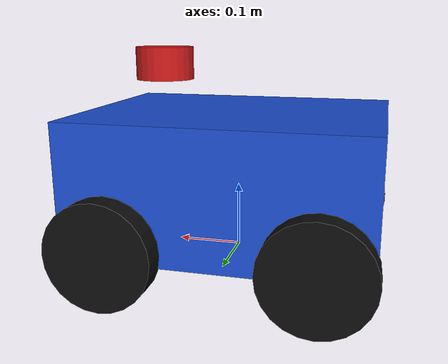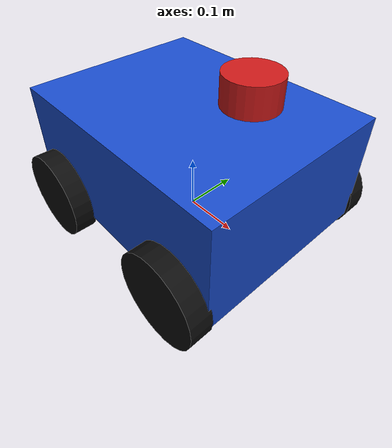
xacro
<?xml version="1.0"?>
<robot xmlns:xacro="http://www.ros.org/wiki/xacro" name="learning_robot">
  <material name="blue"><color rgba="0.1 0.3 0.8 1.0"/></material>
  <material name="black"><color rgba="0.05 0.05 0.05 1.0"/></material>
  <material name="red"><color rgba="0.8 0.1 0.1 1.0"/></material>
  <link name="base_footprint"/>
  <joint name="base_footprint_to_base_link" type="fixed">
    <parent link="base_footprint"/>
    <child link="base_link"/>
    <origin xyz="0 0 0.12"/>
  </joint>
  <link name="base_link">
    <visual>
      <geometry><box size="0.45 0.35 0.20"/></geometry>
      <material name="blue"/>
    </visual>
    <collision><geometry><box size="0.45 0.35 0.20"/></geometry></collision>
    <inertial><mass value="5.0"/><inertia ixx="0.08" ixy="0" ixz="0" iyy="0.11" iyz="0" izz="0.13"/></inertial>
  </link>
  <xacro:macro name="wheel" params="name x y">
    <link name="${name}">
      <visual><origin rpy="1.5708 0 0"/><geometry><cylinder radius="0.08" length="0.04"/></geometry><material name="black"/></visual>
      <collision><origin rpy="1.5708 0 0"/><geometry><cylinder radius="0.08" length="0.04"/></geometry></collision>
    </link>
    <joint name="${name}_joint" type="continuous"><parent link="base_link"/><child link="${name}"/><origin xyz="${x} ${y} -0.08"/><axis xyz="0 1 0"/></joint>
  </xacro:macro>
  <xacro:wheel name="left_front_wheel" x="0.15" y="0.19"/>
  <xacro:wheel name="left_rear_wheel" x="-0.15" y="0.19"/>
  <xacro:wheel name="right_front_wheel" x="0.15" y="-0.19"/>
  <xacro:wheel name="right_rear_wheel" x="-0.15" y="-0.19"/>
  <joint name="base_link_to_laser" type="fixed">
    <parent link="base_link"/>
    <child link="laser_link"/>
    <origin xyz="0.12 0 0.17"/>
  </joint>
  <link name="laser_link">
    <visual>
      <geometry><cylinder radius="0.045" length="0.05"/></geometry>
      <material name="red"><color rgba="0.8 0.1 0.1 1.0"/></material>
    </visual>
  </link>
  <gazebo>
    <plugin filename="gz-sim-diff-drive-system" name="gz::sim::systems::DiffDrive">
      <left_joint>left_front_wheel_joint</left_joint><left_joint>left_rear_wheel_joint</left_joint><right_joint>right_front_wheel_joint</right_joint><right_joint>right_rear_wheel_joint</right_joint>
      <wheel_separation>0.38</wheel_separation><wheel_radius>0.08</wheel_radius><topic>/cmd_vel</topic><odom_topic>/odom</odom_topic><tf_topic>/tf</tf_topic><frame_id>odom</frame_id><child_frame_id>base_footprint</child_frame_id>
    </plugin>
    <plugin filename="gz-sim-joint-state-publisher-system" name="gz::sim::systems::JointStatePublisher"/>
  </gazebo>
  <gazebo reference="laser_link">
    <sensor name="laser" type="gpu_lidar">
      <pose>0 0 0 0 0 0</pose>
      <update_rate>10</update_rate>
      <topic>/scan</topic>
      <gz_frame_id>laser_link</gz_frame_id>
      <ray><scan><horizontal><samples>360</samples><resolution>1</resolution><min_angle>-3.14159</min_angle><max_angle>3.14159</max_angle></horizontal></scan><range><min>0.12</min><max>8.0</max><resolution>0.01</resolution></range></ray>
    </sensor>
  </gazebo>
</robot>
